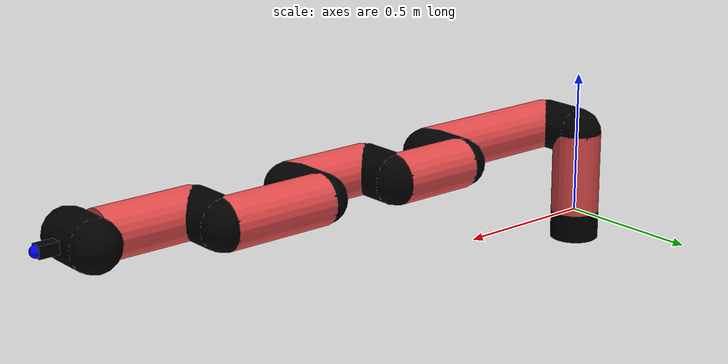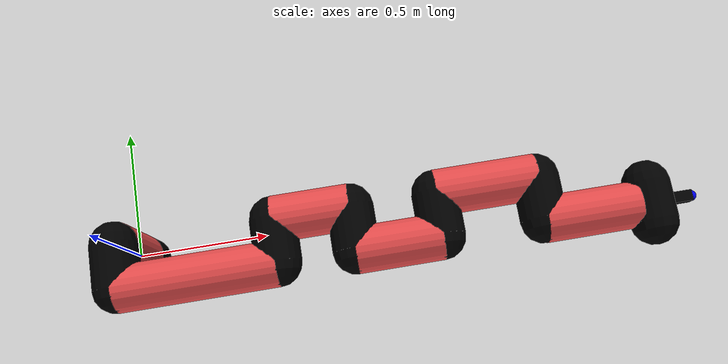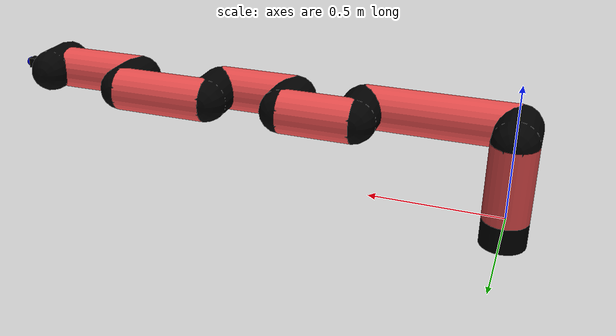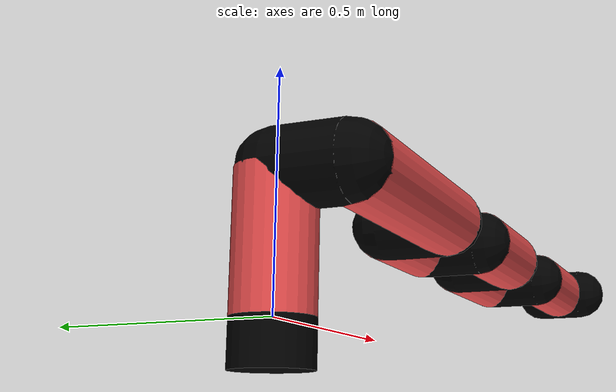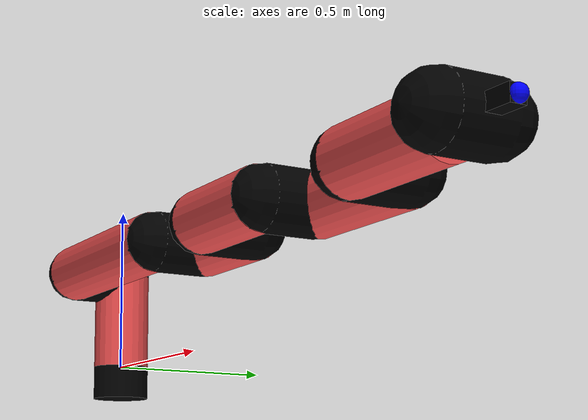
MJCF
<mujoco model="manipulator">
		<compiler angle="degree" coordinate="local" inertiafromgeom="auto" meshdir="meshes/"/>
		<option gravity="0 0 0" integrator="RK4" iterations="30" timestep="0.01"/>

		<default>
		<joint armature="1" limited="true" stiffness="10" damping="15" frictionloss="5.0"/>
		<geom conaffinity="1" condim="3" contype="1" friction=".5 .1 .1" margin="0.002"/>
		<motor ctrllimited="true"/>
		<position ctrllimited="true"/>
		</default>

		<asset>
		<texture builtin="gradient" height="100" rgb1="1.0 1.0 1.0" rgb2="1.0 1.0 1.0" type="skybox" width="100"/>
		<texture builtin="flat" height="32" name="arm_tex" rgb1="0.9 0.3 0.3" type="2d" width="32"/>
		<texture builtin="flat" height="32" name="gripper_tex" rgb1="0.0 0.0 0.0" type="cube" width="32"/>

		<material name="arm_mat" shininess="0.1" specular="0.1" texture="arm_tex"/>
		<material name="gripper_mat" shininess="1" specular="1" texture="gripper_tex"/>
		</asset>

		<worldbody>
		<light cutoff="45" diffuse=".8 .8 .8" dir="0 0.16 -1" directional="false" name="light" pos="0 -2.0 8.0" specular="0.3 0.3 0.3"/>

		<body name="base_link" pos="0 0 -0.1">
		<geom fromto="0 0 0 0 0 0.1" material="arm_mat" name="base_link" rgba="0.0 0.0 0.0 1" size="0.085" type="cylinder"/>
		</body>

		<body name="l1" pos="0 0 0">
<geom fromto="0 0 0 0 0 0.29" material="arm_mat" name="l1" rgba="0.9 0.3 0.3 1" size="0.085" type="cylinder"/>
<geom fromto="0 0 0.29 0 -0.16 0.29" material="arm_mat" name="l1_ex" rgba="0.0 0.0 0.0 1" size="0.085" type="capsule"/>
<joint axis="0 0 1" name="j1" pos="0 0 0" range="-90 90" damping="29.24" frictionloss="9.02"/>

<body name="l2" pos="0 -0.16 0.29">
<geom fromto="0 0 0 0.57 0 0" material="arm_mat" name="l2" rgba="0.9 0.3 0.3 1" size="0.085" type="cylinder"/>
<geom fromto="0.57 0 0 0.57 0.16 0" material="arm_mat" name="l2_ex" rgba="0.0 0.0 0.0 1" size="0.085" type="capsule"/>
<joint axis="0.04 1.24 -0.15" name="j2" pos="0 0 0" range="-90 60" damping="32.75" frictionloss="9.96"/>

<body name="l3" pos="0.57 0.16 0">
<geom fromto="0 0 0 0.28 0 0" material="arm_mat" name="l3" rgba="0.9 0.3 0.3 1" size="0.085" type="cylinder"/>
<geom fromto="0.28 0 0 0.28 -0.16 0" material="arm_mat" name="l3_ex" rgba="0.0 0.0 0.0 1" size="0.085" type="capsule"/>
<joint axis="-0.13 0.88 0.13" name="j3" pos="0 0 0" range="-30 60" damping="25.56" frictionloss="7.52"/>

<body name="l4" pos="0.28 -0.16 0">
<geom fromto="0 0 0 0.31 0 0" material="arm_mat" name="l4" rgba="0.9 0.3 0.3 1" size="0.085" type="cylinder"/>
<geom fromto="0.31 0 0 0.31 0.16 0" material="arm_mat" name="l4_ex" rgba="0.0 0.0 0.0 1" size="0.085" type="capsule"/>
<joint axis="-0.02 0.78 0.0" name="j4" pos="0 0 0" range="-30 60" damping="35.72" frictionloss="11.65"/>

<body name="l5" pos="0.31 0.16 0">
<geom fromto="0 0 0 0.37 0 0" material="arm_mat" name="l5" rgba="0.9 0.3 0.3 1" size="0.085" type="cylinder"/>
<geom fromto="0.37 0 0 0.37 -0.16 0" material="arm_mat" name="l5_ex" rgba="0.0 0.0 0.0 1" size="0.085" type="capsule"/>
<joint axis="-0.14 1.15 -0.1" name="j5" pos="0 0 0" range="-30 60" damping="29.42" frictionloss="11.67"/>

<body name="l6" pos="0.37 -0.16 0">
<geom fromto="0 0 0 0.34 0 0" material="arm_mat" name="l6" rgba="0.9 0.3 0.3 1" size="0.085" type="cylinder"/>
<joint axis="-0.24 1.05 0.17" name="j6" pos="0 0 0" range="-30 60" damping="37.31" frictionloss="9.03"/>

<body name="gripper" pos="0.34 0 0">
<geom fromto="0.05 -0.07 0 0.05 0.07 0" material="gripper_mat" name="gripper" rgba="0.0 0.0 0.0 1" size="0.085" type="capsule"/><joint axis="1 0 0" name="j7" pos="0 0 0" range="-90 90" damping="15" frictionloss="5.0"/><body name="finger" pos="0.1 0 0">
<geom fromto="0 0.0 0 0.1 0.0 0" material="gripper_mat" name="finger" rgba="0.0 0.0 0.0 1" size="0.020 0.06 0.06" type="box"/>
</body>
<site name="current" pos="0.2 0. 0.0" rgba="0. 0. 1.0 1" size="0.02" type="sphere"/>
</body>
</body>
</body>
</body>
</body>
</body>
</body>
</worldbody>
<actuator>
<motor ctrllimited="true" ctrlrange="-1.0 1.0" joint="j1" gear="75.98"/>
<motor ctrllimited="true" ctrlrange="-1.0 1.0" joint="j2" gear="85.91"/>
<motor ctrllimited="true" ctrlrange="-1.0 1.0" joint="j3" gear="71.1"/>
<motor ctrllimited="true" ctrlrange="-1.0 1.0" joint="j4" gear="80.44"/>
<motor ctrllimited="true" ctrlrange="-1.0 1.0" joint="j5" gear="76.36"/>
<motor ctrllimited="true" ctrlrange="-1.0 1.0" joint="j6" gear="66.81"/>
<motor ctrllimited="true" ctrlrange="-1.0 1.0" joint="j7" gear="80"/>
</actuator>
</mujoco>
